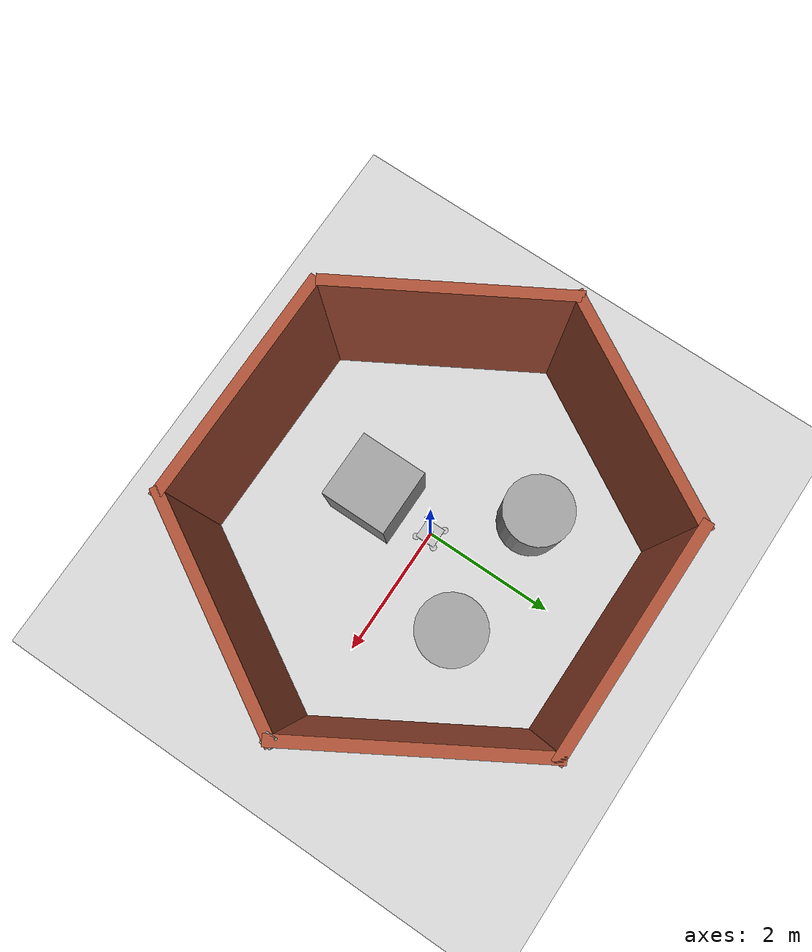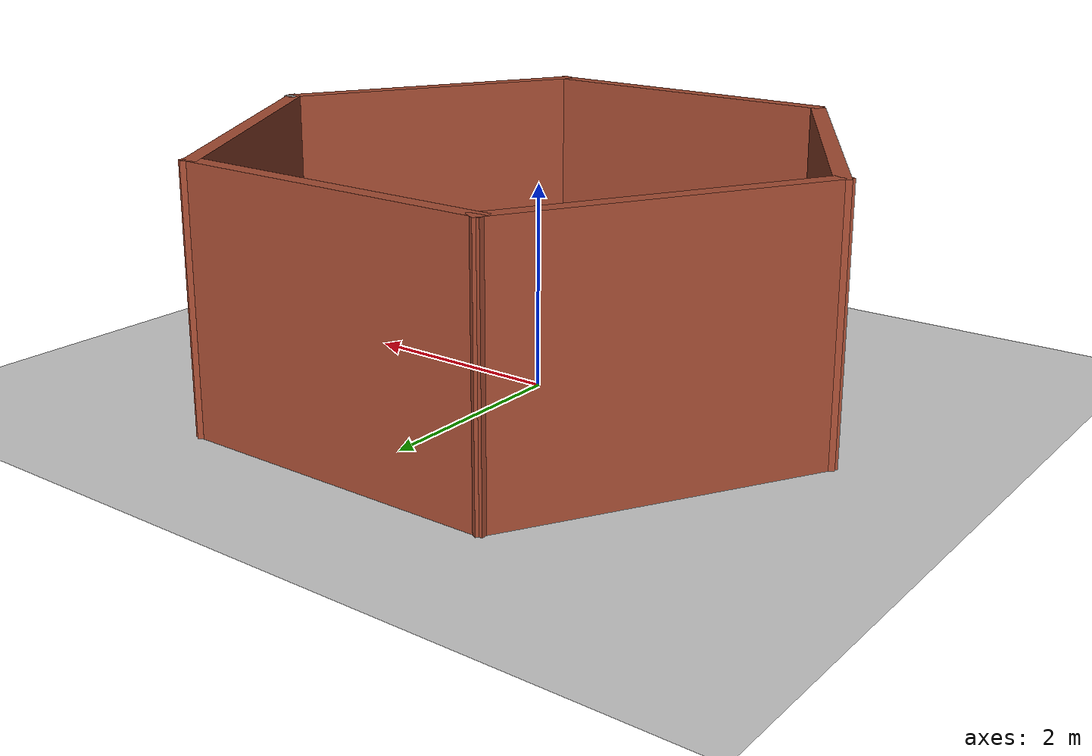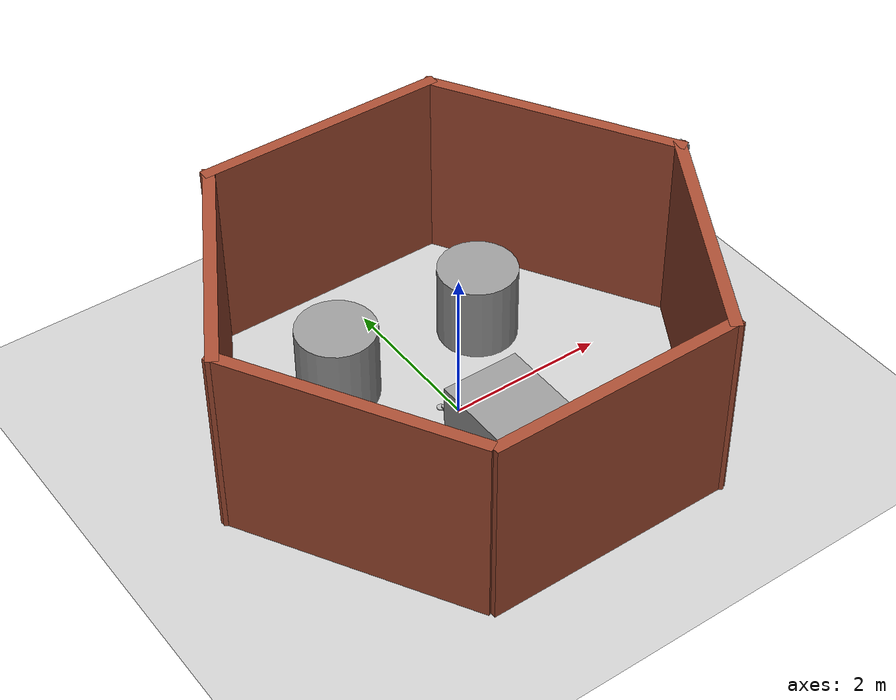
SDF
<sdf version="1.7">
 <world name="default">
  <light name="sun" type="directional">
   <pose>0 0 10 0 -0 0</pose>
   <diffuse>0.8 0.8 0.8 1</diffuse>
   <specular>0.2 0.2 0.2 1</specular>
   <attenuation>
    <range>1000</range>
    <constant>0.9</constant>
    <linear>0.01</linear>
    <quadratic>0.001</quadratic>
   </attenuation>
   <direction>-0.5 0.1 -0.9</direction>
   <spot><inner_angle>0</inner_angle><outer_angle>0</outer_angle><falloff>0</falloff></spot>
  </light>
  <model name="ground_plane">
   <static>1</static>
   <link name="link">
    <collision name="collision">
     <geometry><plane><normal>0 0 1</normal><size>100 100</size></plane></geometry>
     <surface><friction><ode><mu>100</mu><mu2>50</mu2></ode></friction></surface>
    </collision>
    <visual name="visual">
     <cast_shadows>0</cast_shadows>
     <geometry><plane><normal>0 0 1</normal><size>100 100</size></plane></geometry>
     <material>
      <script><uri>file://media/materials/scripts/gazebo.material</uri><name>Gazebo/Grey</name></script>
     </material>
    </visual>
   </link>
  </model>
  <gravity>0 0 -9.8</gravity>
  <magnetic_field>6e-06 2.3e-05 -4.2e-05</magnetic_field>
  <atmosphere type="adiabatic"/>
  <physics type="ode">
   <max_step_size>0.001</max_step_size>
   <real_time_factor>1</real_time_factor>
   <real_time_update_rate>1000</real_time_update_rate>
  </physics>
  <scene><ambient>0.4 0.4 0.4 1</ambient><background>0.7 0.7 0.7 1</background><shadows>1</shadows></scene>
  <audio><device>default</device></audio>
  <spherical_coordinates>
   <surface_model>EARTH_WGS84</surface_model>
   <latitude_deg>0</latitude_deg>
   <longitude_deg>0</longitude_deg>
   <elevation>0</elevation>
   <heading_deg>0</heading_deg>
  </spherical_coordinates>
  <model name="s6">
   <pose>0.060122 0.04512 0 0 -0 0</pose>
   <link name="Wall_16">
    <collision name="Wall_16_Collision">
     <geometry><box><size>3.25 0.15 2.5</size></box></geometry>
     <pose>0 0 1.25 0 -0 0</pose>
    </collision>
    <visual name="Wall_16_Visual">
     <pose>0 0 1.25 0 -0 0</pose>
     <geometry><box><size>3.25 0.15 2.5</size></box></geometry>
     <material>
      <script><uri>file://media/materials/scripts/gazebo.material</uri><name>Gazebo/Bricks</name></script>
      <ambient>1 1 1 1</ambient>
     </material>
     <meta><layer>0</layer></meta>
    </visual>
    <pose>-0.040122 2.72488 0 0 -0 0</pose>
   </link>
   <link name="Wall_18">
    <collision name="Wall_18_Collision">
     <geometry><box><size>3.25 0.15 2.5</size></box></geometry>
     <pose>0 0 1.25 0 -0 0</pose>
    </collision>
    <visual name="Wall_18_Visual">
     <pose>0 0 1.25 0 -0 0</pose>
     <geometry><box><size>3.25 0.15 2.5</size></box></geometry>
     <material>
      <script><uri>file://media/materials/scripts/gazebo.material</uri><name>Gazebo/Bricks</name></script>
      <ambient>1 1 1 1</ambient>
     </material>
     <meta><layer>0</layer></meta>
    </visual>
    <pose>-2.36512 1.38254 0 0 -0 -2.0944</pose>
   </link>
   <link name="Wall_19">
    <collision name="Wall_19_Collision">
     <geometry><box><size>3.25 0.15 2.5</size></box></geometry>
     <pose>0 0 1.25 0 -0 0</pose>
    </collision>
    <visual name="Wall_19_Visual">
     <pose>0 0 1.25 0 -0 0</pose>
     <geometry><box><size>3.25 0.15 2.5</size></box></geometry>
     <material>
      <script><uri>file://media/materials/scripts/gazebo.material</uri><name>Gazebo/Bricks</name></script>
      <ambient>1 1 1 1</ambient>
     </material>
     <meta><layer>0</layer></meta>
    </visual>
    <pose>-2.36512 -1.30214 0 0 -0 -1.0472</pose>
   </link>
   <link name="Wall_22">
    <collision name="Wall_22_Collision">
     <geometry><box><size>3.25 0.15 2.5</size></box></geometry>
     <pose>0 0 1.25 0 -0 0</pose>
    </collision>
    <visual name="Wall_22_Visual">
     <pose>0 0 1.25 0 -0 0</pose>
     <geometry><box><size>3.25 0.15 2.5</size></box></geometry>
     <material>
      <script><uri>file://media/materials/scripts/gazebo.material</uri><name>Gazebo/Bricks</name></script>
      <ambient>1 1 1 1</ambient>
     </material>
     <meta><layer>0</layer></meta>
    </visual>
    <pose>0.039878 -2.72512 0 0 -0 3.14159</pose>
   </link>
   <link name="Wall_24">
    <collision name="Wall_24_Collision">
     <geometry><box><size>3.25 0.15 2.5</size></box></geometry>
     <pose>0 0 1.25 0 -0 0</pose>
    </collision>
    <visual name="Wall_24_Visual">
     <pose>0 0 1.25 0 -0 0</pose>
     <geometry><box><size>3.25 0.15 2.5</size></box></geometry>
     <material>
      <script><uri>file://media/materials/scripts/gazebo.material</uri><name>Gazebo/Bricks</name></script>
      <ambient>1 1 1 1</ambient>
     </material>
     <meta><layer>0</layer></meta>
    </visual>
    <pose>2.36488 -1.38278 0 0 -0 1.0472</pose>
   </link>
   <link name="Wall_25">
    <collision name="Wall_25_Collision">
     <geometry><box><size>0.15 0.15 2.5</size></box></geometry>
     <pose>0 0 1.25 0 -0 0</pose>
    </collision>
    <visual name="Wall_25_Visual">
     <pose>0 0 1.25 0 -0 0</pose>
     <geometry><box><size>0.15 0.15 2.5</size></box></geometry>
     <material>
      <script><uri>file://media/materials/scripts/gazebo.material</uri><name>Gazebo/Grey</name></script>
      <ambient>1 1 1 1</ambient>
     </material>
     <meta><layer>0</layer></meta>
    </visual>
    <pose>3.13988 -0.040443 0 0 -0 0</pose>
   </link>
   <link name="Wall_28">
    <collision name="Wall_28_Collision">
     <geometry><box><size>3.35997 0.15 2.5</size></box></geometry>
     <pose>0 0 1.25 0 -0 0</pose>
    </collision>
    <visual name="Wall_28_Visual">
     <pose>0 0 1.25 0 -0 0</pose>
     <geometry><box><size>3.35997 0.15 2.5</size></box></geometry>
     <material>
      <script><uri>file://media/materials/scripts/gazebo.material</uri><name>Gazebo/Bricks</name></script>
      <ambient>1 1 1 1</ambient>
     </material>
     <meta><layer>0</layer></meta>
    </visual>
    <pose>2.32488 1.34222 0 0 -0 -1.03818</pose>
   </link>
   <static>1</static>
  </model>
  <model name="quadrotor">
   <link name="base_link">
    <inertial>
     <pose>0.003364 0 0.00285 0 -0 0</pose>
     <mass>1.07</mass>
     <inertia>
      <ixx>0.0103971</ixx>
      <ixy>0</ixy>
      <ixz>-4.37383e-05</ixz>
      <iyy>0.0110329</iyy>
      <iyz>0</iyz>
      <izz>0.0208359</izz>
     </inertia>
    </inertial>
    <collision name="base_link_collision"><geometry><box><size>0.3 0.3 0.05</size></box></geometry></collision>
    <collision name="base_link_fixed_joint_lump__lidar_link_collision_1">
     <pose>0 0 0.055 0 -0 0</pose>
     <geometry><cylinder><length>0.06</length><radius>0.04</radius></cylinder></geometry>
    </collision>
    <collision name="base_link_fixed_joint_lump__ultrasonic_link_collision_2">
     <pose>0.18 0 0.015 0 -0 0</pose>
     <geometry><cylinder><length>0.03</length><radius>0.015</radius></cylinder></geometry>
    </collision>
    <visual name="base_link_visual"><geometry><box><size>0.3 0.3 0.05</size></box></geometry></visual>
    <visual name="base_link_fixed_joint_lump__lidar_link_visual_1">
     <pose>0 0 0.055 0 -0 0</pose>
     <geometry><cylinder><length>0.06</length><radius>0.04</radius></cylinder></geometry>
    </visual>
    <visual name="base_link_fixed_joint_lump__ultrasonic_link_visual_2">
     <pose>0.18 0 0.015 0 -0 0</pose>
     <geometry><cylinder><length>0.03</length><radius>0.015</radius></cylinder></geometry>
    </visual>
    <sensor name="lidar_sensor" type="ray">
     <always_on>1</always_on>
     <update_rate>15</update_rate>
     <visualize>1</visualize>
     <ray>
      <scan>
       <horizontal>
        <samples>1080</samples>
        <resolution>1</resolution>
        <min_angle>-2.35619</min_angle>
        <max_angle>2.35619</max_angle>
       </horizontal>
       <vertical><samples>1</samples><min_angle>0</min_angle><max_angle>0</max_angle></vertical>
      </scan>
      <range><min>0.12</min><max>12</max><resolution>0.01</resolution></range>
      <noise><type>gaussian</type><mean>0</mean><stddev>0.01</stddev></noise>
     </ray>
     <plugin name="lidar_ros" filename="libgazebo_ros_ray_sensor.so">
      <ros><namespace>/lidar</namespace></ros>
      <frame_name>lidar_link</frame_name>
      <output_type>sensor_msgs/LaserScan</output_type>
      <topic>scan</topic>
     </plugin>
     <pose>0 0 0.055 0 -0 0</pose>
    </sensor>
    <sensor name="ultrasonic_sensor" type="ray">
     <always_on>1</always_on>
     <update_rate>20</update_rate>
     <visualize>0</visualize>
     <ray>
      <scan>
       <horizontal>
        <samples>5</samples>
        <resolution>1</resolution>
        <min_angle>-0.0872665</min_angle>
        <max_angle>0.0872665</max_angle>
       </horizontal>
       <vertical><samples>1</samples><min_angle>0</min_angle><max_angle>0</max_angle></vertical>
      </scan>
      <range><min>0.02</min><max>3</max><resolution>0.005</resolution></range>
      <noise><type>gaussian</type><mean>0</mean><stddev>0.01</stddev></noise>
     </ray>
     <plugin name="ultrasonic_ros" filename="libgazebo_ros_ray_sensor.so">
      <ros><namespace>/ultrasonic</namespace></ros>
      <frame_name>ultrasonic_link</frame_name>
      <output_type>sensor_msgs/LaserScan</output_type>
      <topic>scan</topic>
     </plugin>
     <pose>0.18 0 0.015 0 -0 0</pose>
    </sensor>
   </link>
   <joint name="base_to_propeller_1" type="revolute">
    <pose relative_to="base_link">0.15 0.15 0 0 -0 0</pose>
    <parent>base_link</parent>
    <child>propeller_1</child>
    <axis>
     <xyz>0 0 1</xyz>
     <limit><lower>-1e+16</lower><upper>1e+16</upper></limit>
     <dynamics><spring_reference>0</spring_reference><spring_stiffness>0</spring_stiffness></dynamics>
    </axis>
   </joint>
   <link name="propeller_1">
    <pose relative_to="base_to_propeller_1">0 0 0 0 -0 0</pose>
    <inertial>
     <mass>0.01</mass>
     <inertia><ixx>0.0001</ixx><ixy>0</ixy><ixz>0</ixz><iyy>0.0001</iyy><iyz>0</iyz><izz>0.0002</izz></inertia>
    </inertial>
    <collision name="propeller_1_collision">
     <geometry><cylinder><length>0.01</length><radius>0.05</radius></cylinder></geometry>
    </collision>
    <visual name="propeller_1_visual">
     <geometry><cylinder><length>0.01</length><radius>0.05</radius></cylinder></geometry>
    </visual>
   </link>
   <joint name="base_to_propeller_2" type="revolute">
    <pose relative_to="base_link">-0.15 0.15 0 0 -0 0</pose>
    <parent>base_link</parent>
    <child>propeller_2</child>
    <axis>
     <xyz>0 0 1</xyz>
     <limit><lower>-1e+16</lower><upper>1e+16</upper></limit>
     <dynamics><spring_reference>0</spring_reference><spring_stiffness>0</spring_stiffness></dynamics>
    </axis>
   </joint>
   <link name="propeller_2">
    <pose relative_to="base_to_propeller_2">0 0 0 0 -0 0</pose>
    <inertial>
     <mass>0.01</mass>
     <inertia><ixx>0.0001</ixx><ixy>0</ixy><ixz>0</ixz><iyy>0.0001</iyy><iyz>0</iyz><izz>0.0002</izz></inertia>
    </inertial>
    <collision name="propeller_2_collision">
     <geometry><cylinder><length>0.01</length><radius>0.05</radius></cylinder></geometry>
    </collision>
    <visual name="propeller_2_visual">
     <geometry><cylinder><length>0.01</length><radius>0.05</radius></cylinder></geometry>
    </visual>
   </link>
   <joint name="base_to_propeller_3" type="revolute">
    <pose relative_to="base_link">-0.15 -0.15 0 0 -0 0</pose>
    <parent>base_link</parent>
    <child>propeller_3</child>
    <axis>
     <xyz>0 0 1</xyz>
     <limit><lower>-1e+16</lower><upper>1e+16</upper></limit>
     <dynamics><spring_reference>0</spring_reference><spring_stiffness>0</spring_stiffness></dynamics>
    </axis>
   </joint>
   <link name="propeller_3">
    <pose relative_to="base_to_propeller_3">0 0 0 0 -0 0</pose>
    <inertial>
     <mass>0.01</mass>
     <inertia><ixx>0.0001</ixx><ixy>0</ixy><ixz>0</ixz><iyy>0.0001</iyy><iyz>0</iyz><izz>0.0002</izz></inertia>
    </inertial>
    <collision name="propeller_3_collision">
     <geometry><cylinder><length>0.01</length><radius>0.05</radius></cylinder></geometry>
    </collision>
    <visual name="propeller_3_visual">
     <geometry><cylinder><length>0.01</length><radius>0.05</radius></cylinder></geometry>
    </visual>
   </link>
   <joint name="base_to_propeller_4" type="revolute">
    <pose relative_to="base_link">0.15 -0.15 0 0 -0 0</pose>
    <parent>base_link</parent>
    <child>propeller_4</child>
    <axis>
     <xyz>0 0 1</xyz>
     <limit><lower>-1e+16</lower><upper>1e+16</upper></limit>
     <dynamics><spring_reference>0</spring_reference><spring_stiffness>0</spring_stiffness></dynamics>
    </axis>
   </joint>
   <link name="propeller_4">
    <pose relative_to="base_to_propeller_4">0 0 0 0 -0 0</pose>
    <inertial>
     <mass>0.01</mass>
     <inertia><ixx>0.0001</ixx><ixy>0</ixy><ixz>0</ixz><iyy>0.0001</iyy><iyz>0</iyz><izz>0.0002</izz></inertia>
    </inertial>
    <collision name="propeller_4_collision">
     <geometry><cylinder><length>0.01</length><radius>0.05</radius></cylinder></geometry>
    </collision>
    <visual name="propeller_4_visual">
     <geometry><cylinder><length>0.01</length><radius>0.05</radius></cylinder></geometry>
    </visual>
   </link>
   <static>0</static>
   <plugin name="planar_move" filename="libgazebo_ros_planar_move.so">
    <ros><namespace>/</namespace></ros>
    <command_topic>/cmd_vel</command_topic>
    <odometry_frame>odom</odometry_frame>
    <odometry_topic>odom</odometry_topic>
    <robot_base_frame>base_link</robot_base_frame>
    <publish_odom>1</publish_odom>
    <update_rate>50</update_rate>
   </plugin>
   <pose>0 -0 0.025 0 -0 0</pose>
  </model>
  <model name="unit_cylinder">
   <link name="link">
    <inertial>
     <mass>1</mass>
     <inertia><ixx>0.145833</ixx><ixy>0</ixy><ixz>0</ixz><iyy>0.145833</iyy><iyz>0</iyz><izz>0.125</izz></inertia>
    </inertial>
    <visual name="visual">
     <geometry><cylinder><radius>0.5</radius><length>1</length></cylinder></geometry>
     <material>
      <script><name>Gazebo/Grey</name><uri>file://media/materials/scripts/gazebo.material</uri></script>
      <shader type="pixel"/>
     </material>
    </visual>
    <collision name="collision">
     <geometry><cylinder><radius>0.5</radius><length>1</length></cylinder></geometry>
     <surface>
      <friction>
       <ode><mu>1</mu><mu2>1</mu2><fdir1>0 0 0</fdir1><slip1>0</slip1><slip2>0</slip2></ode>
       <torsional>
        <coefficient>1</coefficient>
        <patch_radius>0</patch_radius>
        <surface_radius>0</surface_radius>
        <use_patch_radius>1</use_patch_radius>
        <ode><slip>0</slip></ode>
       </torsional>
      </friction>
      <bounce><restitution_coefficient>0</restitution_coefficient><threshold>1e+06</threshold></bounce>
      <contact>
       <collide_without_contact>0</collide_without_contact>
       <collide_without_contact_bitmask>1</collide_without_contact_bitmask>
       <collide_bitmask>1</collide_bitmask>
       <ode>
        <soft_cfm>0</soft_cfm>
        <soft_erp>0.2</soft_erp>
        <kp>1e+13</kp>
        <kd>1</kd>
        <max_vel>0.01</max_vel>
        <min_depth>0</min_depth>
       </ode>
       <bullet>
        <split_impulse>1</split_impulse>
        <split_impulse_penetration_threshold>-0.01</split_impulse_penetration_threshold>
        <soft_cfm>0</soft_cfm>
        <soft_erp>0.2</soft_erp>
        <kp>1e+13</kp>
        <kd>1</kd>
       </bullet>
      </contact>
     </surface>
    </collision>
   </link>
   <static>1</static>
   <pose>-0.951239 1.11304 0.5 0 -0 0</pose>
  </model>
  <model name="unit_cylinder_0">
   <link name="link">
    <inertial>
     <mass>1</mass>
     <inertia><ixx>0.145833</ixx><ixy>0</ixy><ixz>0</ixz><iyy>0.145833</iyy><iyz>0</iyz><izz>0.125</izz></inertia>
    </inertial>
    <visual name="visual">
     <geometry><cylinder><radius>0.5</radius><length>1</length></cylinder></geometry>
     <material>
      <script><name>Gazebo/Grey</name><uri>file://media/materials/scripts/gazebo.material</uri></script>
      <shader type="pixel"/>
     </material>
    </visual>
    <collision name="collision">
     <geometry><cylinder><radius>0.5</radius><length>1</length></cylinder></geometry>
     <surface>
      <friction>
       <ode><mu>1</mu><mu2>1</mu2><fdir1>0 0 0</fdir1><slip1>0</slip1><slip2>0</slip2></ode>
       <torsional>
        <coefficient>1</coefficient>
        <patch_radius>0</patch_radius>
        <surface_radius>0</surface_radius>
        <use_patch_radius>1</use_patch_radius>
        <ode><slip>0</slip></ode>
       </torsional>
      </friction>
      <bounce><restitution_coefficient>0</restitution_coefficient><threshold>1e+06</threshold></bounce>
      <contact>
       <collide_without_contact>0</collide_without_contact>
       <collide_without_contact_bitmask>1</collide_without_contact_bitmask>
       <collide_bitmask>1</collide_bitmask>
       <ode>
        <soft_cfm>0</soft_cfm>
        <soft_erp>0.2</soft_erp>
        <kp>1e+13</kp>
        <kd>1</kd>
        <max_vel>0.01</max_vel>
        <min_depth>0</min_depth>
       </ode>
       <bullet>
        <split_impulse>1</split_impulse>
        <split_impulse_penetration_threshold>-0.01</split_impulse_penetration_threshold>
        <soft_cfm>0</soft_cfm>
        <soft_erp>0.2</soft_erp>
        <kp>1e+13</kp>
        <kd>1</kd>
       </bullet>
      </contact>
     </surface>
    </collision>
   </link>
   <static>1</static>
   <pose>1.02305 1.02002 0.5 0 -0 0</pose>
  </model>
  <model name="unit_box">
   <link name="link">
    <inertial>
     <mass>1</mass>
     <inertia>
      <ixx>0.166667</ixx>
      <ixy>0</ixy>
      <ixz>0</ixz>
      <iyy>0.166667</iyy>
      <iyz>0</iyz>
      <izz>0.166667</izz>
     </inertia>
    </inertial>
    <visual name="visual">
     <geometry><box><size>1 1 1</size></box></geometry>
     <material>
      <script><name>Gazebo/Grey</name><uri>file://media/materials/scripts/gazebo.material</uri></script>
      <shader type="pixel"/>
     </material>
    </visual>
    <collision name="collision">
     <geometry><box><size>1 1 1</size></box></geometry>
     <surface>
      <friction>
       <ode><mu>1</mu><mu2>1</mu2><fdir1>0 0 0</fdir1><slip1>0</slip1><slip2>0</slip2></ode>
       <torsional>
        <coefficient>1</coefficient>
        <patch_radius>0</patch_radius>
        <surface_radius>0</surface_radius>
        <use_patch_radius>1</use_patch_radius>
        <ode><slip>0</slip></ode>
       </torsional>
      </friction>
      <bounce><restitution_coefficient>0</restitution_coefficient><threshold>1e+06</threshold></bounce>
      <contact>
       <collide_without_contact>0</collide_without_contact>
       <collide_without_contact_bitmask>1</collide_without_contact_bitmask>
       <collide_bitmask>1</collide_bitmask>
       <ode>
        <soft_cfm>0</soft_cfm>
        <soft_erp>0.2</soft_erp>
        <kp>1e+13</kp>
        <kd>1</kd>
        <max_vel>0.01</max_vel>
        <min_depth>0</min_depth>
       </ode>
       <bullet>
        <split_impulse>1</split_impulse>
        <split_impulse_penetration_threshold>-0.01</split_impulse_penetration_threshold>
        <soft_cfm>0</soft_cfm>
        <soft_erp>0.2</soft_erp>
        <kp>1e+13</kp>
        <kd>1</kd>
       </bullet>
      </contact>
     </surface>
    </collision>
   </link>
   <static>1</static>
   <pose>-0.02287 -0.940762 0.5 0 -0 0</pose>
  </model>
 </world>
</sdf>
